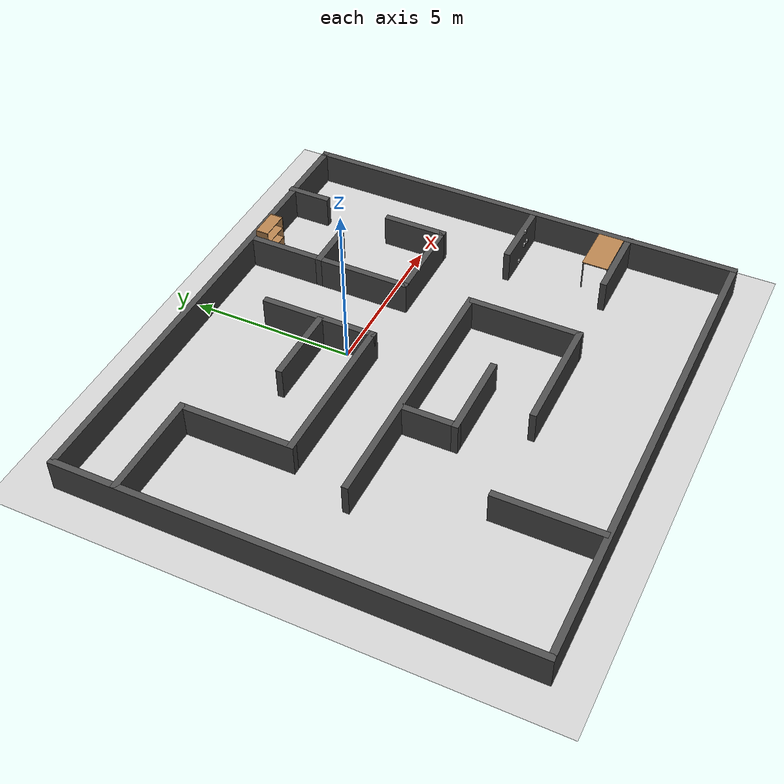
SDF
<sdf version="1.7">
 <world name="default">
  <light name="sun" type="directional">
   <pose>0 0 10 0 -0 0</pose>
   <diffuse>0.8 0.8 0.8 1</diffuse>
   <specular>0.2 0.2 0.2 1</specular>
   <attenuation>
    <range>1000</range>
    <constant>0.9</constant>
    <linear>0.01</linear>
    <quadratic>0.001</quadratic>
   </attenuation>
   <direction>-0.5 0.1 -0.9</direction>
   <spot><inner_angle>0</inner_angle><outer_angle>0</outer_angle><falloff>0</falloff></spot>
  </light>
  <model name="ground_plane">
   <static>1</static>
   <link name="link">
    <collision name="collision">
     <geometry><plane><normal>0 0 1</normal><size>100 100</size></plane></geometry>
     <surface><friction><ode><mu>100</mu><mu2>50</mu2></ode></friction></surface>
    </collision>
    <visual name="visual">
     <cast_shadows>0</cast_shadows>
     <geometry><plane><normal>0 0 1</normal><size>100 100</size></plane></geometry>
     <material>
      <script><uri>file://media/materials/scripts/gazebo.material</uri><name>Gazebo/Grey</name></script>
     </material>
    </visual>
    <velocity_decay><linear>0</linear><angular>0</angular></velocity_decay>
   </link>
  </model>
  <physics type="ode">
   <max_step_size>0.001</max_step_size>
   <real_time_factor>1</real_time_factor>
   <real_time_update_rate>1000</real_time_update_rate>
  </physics>
  <scene><ambient>0.4 0.4 0.4 1</ambient><background>0.7 0.7 0.7 1</background><shadows>1</shadows></scene>
  <spherical_coordinates>
   <surface_model>EARTH_WGS84</surface_model>
   <latitude_deg>0</latitude_deg>
   <longitude_deg>0</longitude_deg>
   <elevation>0</elevation>
   <heading_deg>0</heading_deg>
  </spherical_coordinates>
  <model name="taller3">
   <link name="Wall_101">
    <collision name="Wall_101_Collision">
     <geometry><box><size>1.37705 0.2 1</size></box></geometry>
     <pose>0 0 0.5 0 -0 0</pose>
    </collision>
    <visual name="Wall_101_Visual">
     <pose>0 0 0.5 0 -0 0</pose>
     <geometry><box><size>1.37705 0.2 1</size></box></geometry>
     <material>
      <script><uri>file://media/materials/scripts/gazebo.material</uri><name>Gazebo/DarkGrey</name></script>
     </material>
    </visual>
    <velocity_decay><linear>0</linear><angular>0</angular></velocity_decay>
    <pose>5.15447 4.00615 0 0 0 -1.5708</pose>
   </link>
   <link name="Wall_103">
    <collision name="Wall_103_Collision">
     <geometry><box><size>1.48406 0.2 1</size></box></geometry>
     <pose>0 0 0.5 0 -0 0</pose>
    </collision>
    <visual name="Wall_103_Visual">
     <pose>0 0 0.5 0 -0 0</pose>
     <geometry><box><size>1.48406 0.2 1</size></box></geometry>
     <material>
      <script><uri>file://media/materials/scripts/gazebo.material</uri><name>Gazebo/DarkGrey</name></script>
     </material>
    </visual>
    <velocity_decay><linear>0</linear><angular>0</angular></velocity_decay>
    <pose>3.12138 2.18706 0 0 -0 0</pose>
   </link>
   <link name="Wall_69">
    <collision name="Wall_69_Collision">
     <geometry><box><size>13.9976 0.2 1</size></box></geometry>
     <pose>0 0 0.5 0 -0 0</pose>
    </collision>
    <visual name="Wall_69_Visual">
     <pose>0 0 0.5 0 -0 0</pose>
     <geometry><box><size>13.9976 0.2 1</size></box></geometry>
     <material>
      <script><uri>file://media/materials/scripts/gazebo.material</uri><name>Gazebo/DarkGrey</name></script>
     </material>
    </visual>
    <velocity_decay><linear>0</linear><angular>0</angular></velocity_decay>
    <pose>-7.64501 -2.34615 0 0 0 -1.5708</pose>
   </link>
   <link name="Wall_70">
    <collision name="Wall_70_Collision">
     <geometry><box><size>15.1297 0.2 1</size></box></geometry>
     <pose>0 0 0.5 0 -0 0</pose>
    </collision>
    <visual name="Wall_70_Visual">
     <pose>0 0 0.5 0 -0 0</pose>
     <geometry><box><size>15.1297 0.2 1</size></box></geometry>
     <material>
      <script><uri>file://media/materials/scripts/gazebo.material</uri><name>Gazebo/DarkGrey</name></script>
     </material>
    </visual>
    <velocity_decay><linear>0</linear><angular>0</angular></velocity_decay>
    <pose>-0.180143 -9.24496 0 0 -0 0</pose>
   </link>
   <link name="Wall_71">
    <collision name="Wall_71_Collision">
     <geometry><box><size>13.9976 0.2 1</size></box></geometry>
     <pose>0 0 0.5 0 -0 0</pose>
    </collision>
    <visual name="Wall_71_Visual">
     <pose>0 0 0.5 0 -0 0</pose>
     <geometry><box><size>13.9976 0.2 1</size></box></geometry>
     <material>
      <script><uri>file://media/materials/scripts/gazebo.material</uri><name>Gazebo/DarkGrey</name></script>
     </material>
    </visual>
    <velocity_decay><linear>0</linear><angular>0</angular></velocity_decay>
    <pose>7.28473 -2.34615 0 0 -0 1.5708</pose>
   </link>
   <link name="Wall_72">
    <collision name="Wall_72_Collision">
     <geometry><box><size>14.9882 0.2 1</size></box></geometry>
     <pose>0 0 0.5 0 -0 0</pose>
    </collision>
    <visual name="Wall_72_Visual">
     <pose>0 0 0.5 0 -0 0</pose>
     <geometry><box><size>14.9882 0.2 1</size></box></geometry>
     <material>
      <script><uri>file://media/materials/scripts/gazebo.material</uri><name>Gazebo/DarkGrey</name></script>
     </material>
    </visual>
    <velocity_decay><linear>0</linear><angular>0</angular></velocity_decay>
    <pose>-0.109386 4.55267 0 0 -0 3.14159</pose>
   </link>
   <link name="Wall_75">
    <collision name="Wall_75_Collision">
     <geometry><box><size>8.01136 0.2 1</size></box></geometry>
     <pose>0 0 0.5 0 -0 0</pose>
    </collision>
    <visual name="Wall_75_Visual">
     <pose>0 0 0.5 0 -0 0</pose>
     <geometry><box><size>8.01136 0.2 1</size></box></geometry>
     <material>
      <script><uri>file://media/materials/scripts/gazebo.material</uri><name>Gazebo/DarkGrey</name></script>
     </material>
    </visual>
    <velocity_decay><linear>0</linear><angular>0</angular></velocity_decay>
    <pose>-1.21233 -2.68167 0 0 -0 0</pose>
   </link>
   <link name="Wall_76">
    <collision name="Wall_76_Collision">
     <geometry><box><size>3.57066 0.2 1</size></box></geometry>
     <pose>0 0 0.5 0 -0 0</pose>
    </collision>
    <visual name="Wall_76_Visual">
     <pose>0 0 0.5 0 -0 0</pose>
     <geometry><box><size>3.57066 0.2 1</size></box></geometry>
     <material>
      <script><uri>file://media/materials/scripts/gazebo.material</uri><name>Gazebo/DarkGrey</name></script>
     </material>
    </visual>
    <velocity_decay><linear>0</linear><angular>0</angular></velocity_decay>
    <pose>2.69336 -4.367 0 0 0 -1.5708</pose>
   </link>
   <link name="Wall_77">
    <collision name="Wall_77_Collision">
     <geometry><box><size>3.62416 0.2 1</size></box></geometry>
     <pose>0 0 0.5 0 -0 0</pose>
    </collision>
    <visual name="Wall_77_Visual">
     <pose>0 0 0.5 0 -0 0</pose>
     <geometry><box><size>3.62416 0.2 1</size></box></geometry>
     <material>
      <script><uri>file://media/materials/scripts/gazebo.material</uri><name>Gazebo/DarkGrey</name></script>
     </material>
    </visual>
    <velocity_decay><linear>0</linear><angular>0</angular></velocity_decay>
    <pose>0.981276 -6.05232 0 0 -0 3.14159</pose>
   </link>
   <link name="Wall_81">
    <collision name="Wall_81_Collision">
     <geometry><box><size>1.85858 0.2 1</size></box></geometry>
     <pose>0 0 0.5 0 -0 0</pose>
    </collision>
    <visual name="Wall_81_Visual">
     <pose>0 0 0.5 0 -0 0</pose>
     <geometry><box><size>1.85858 0.2 1</size></box></geometry>
     <material>
      <script><uri>file://media/materials/scripts/gazebo.material</uri><name>Gazebo/DarkGrey</name></script>
     </material>
    </visual>
    <velocity_decay><linear>0</linear><angular>0</angular></velocity_decay>
    <pose>-2.01486 -3.51096 0 0 0 -1.5708</pose>
   </link>
   <link name="Wall_82">
    <collision name="Wall_82_Collision">
     <geometry><box><size>2.66112 0.2 1</size></box></geometry>
     <pose>0 0 0.5 0 -0 0</pose>
    </collision>
    <visual name="Wall_82_Visual">
     <pose>0 0 0.5 0 -0 0</pose>
     <geometry><box><size>2.66112 0.2 1</size></box></geometry>
     <material>
      <script><uri>file://media/materials/scripts/gazebo.material</uri><name>Gazebo/DarkGrey</name></script>
     </material>
    </visual>
    <velocity_decay><linear>0</linear><angular>0</angular></velocity_decay>
    <pose>-0.784307 -4.34024 0 0 -0 0</pose>
   </link>
   <link name="Wall_84">
    <collision name="Wall_84_Collision">
     <geometry><box><size>2.3401 0.2 1</size></box></geometry>
     <pose>0 0 0.5 0 -0 0</pose>
    </collision>
    <visual name="Wall_84_Visual">
     <pose>0 0 0.5 0 -0 0</pose>
     <geometry><box><size>2.3401 0.2 1</size></box></geometry>
     <material>
      <script><uri>file://media/materials/scripts/gazebo.material</uri><name>Gazebo/DarkGrey</name></script>
     </material>
    </visual>
    <velocity_decay><linear>0</linear><angular>0</angular></velocity_decay>
    <pose>6.22452 -2.84217 0 0 -0 3.14159</pose>
   </link>
   <link name="Wall_86">
    <collision name="Wall_86_Collision">
     <geometry><box><size>3.19614 0.2 1</size></box></geometry>
     <pose>0 0 0.5 0 -0 0</pose>
    </collision>
    <visual name="Wall_86_Visual">
     <pose>0 0 0.5 0 -0 0</pose>
     <geometry><box><size>3.19614 0.2 1</size></box></geometry>
     <material>
      <script><uri>file://media/materials/scripts/gazebo.material</uri><name>Gazebo/DarkGrey</name></script>
     </material>
    </visual>
    <velocity_decay><linear>0</linear><angular>0</angular></velocity_decay>
    <pose>-3.78045 -7.6574 0 0 -0 1.5708</pose>
   </link>
   <link name="Wall_88">
    <collision name="Wall_88_Collision">
     <geometry><box><size>2.3936 0.2 1</size></box></geometry>
     <pose>0 0 0.5 0 -0 0</pose>
    </collision>
    <visual name="Wall_88_Visual">
     <pose>0 0 0.5 0 -0 0</pose>
     <geometry><box><size>2.3936 0.2 1</size></box></geometry>
     <material>
      <script><uri>file://media/materials/scripts/gazebo.material</uri><name>Gazebo/DarkGrey</name></script>
     </material>
    </visual>
    <velocity_decay><linear>0</linear><angular>0</angular></velocity_decay>
    <pose>6.19777 -5.94532 0 0 -0 3.14159</pose>
   </link>
   <link name="Wall_90">
    <collision name="Wall_90_Collision">
     <geometry><box><size>3.30315 0.2 1</size></box></geometry>
     <pose>0 0 0.5 0 -0 0</pose>
    </collision>
    <visual name="Wall_90_Visual">
     <pose>0 0 0.5 0 -0 0</pose>
     <geometry><box><size>3.30315 0.2 1</size></box></geometry>
     <material>
      <script><uri>file://media/materials/scripts/gazebo.material</uri><name>Gazebo/DarkGrey</name></script>
     </material>
    </visual>
    <velocity_decay><linear>0</linear><angular>0</angular></velocity_decay>
    <pose>-6.08105 2.61508 0 0 -0 0</pose>
   </link>
   <link name="Wall_91">
    <collision name="Wall_91_Collision">
     <geometry><box><size>3.57066 0.2 1</size></box></geometry>
     <pose>0 0 0.5 0 -0 0</pose>
    </collision>
    <visual name="Wall_91_Visual">
     <pose>0 0 0.5 0 -0 0</pose>
     <geometry><box><size>3.57066 0.2 1</size></box></geometry>
     <material>
      <script><uri>file://media/materials/scripts/gazebo.material</uri><name>Gazebo/DarkGrey</name></script>
     </material>
    </visual>
    <velocity_decay><linear>0</linear><angular>0</angular></velocity_decay>
    <pose>-4.52948 0.929753 0 0 0 -1.5708</pose>
   </link>
   <link name="Wall_92">
    <collision name="Wall_92_Collision">
     <geometry><box><size>4.90822 0.2 1</size></box></geometry>
     <pose>0 0 0.5 0 -0 0</pose>
    </collision>
    <visual name="Wall_92_Visual">
     <pose>0 0 0.5 0 -0 0</pose>
     <geometry><box><size>4.90822 0.2 1</size></box></geometry>
     <material>
      <script><uri>file://media/materials/scripts/gazebo.material</uri><name>Gazebo/DarkGrey</name></script>
     </material>
    </visual>
    <velocity_decay><linear>0</linear><angular>0</angular></velocity_decay>
    <pose>-2.17537 -0.755576 0 0 -0 0</pose>
   </link>
   <link name="Wall_93">
    <collision name="Wall_93_Collision">
     <geometry><box><size>3.62416 0.2 1</size></box></geometry>
     <pose>0 0 0.5 0 -0 0</pose>
    </collision>
    <visual name="Wall_93_Visual">
     <pose>0 0 0.5 0 -0 0</pose>
     <geometry><box><size>3.62416 0.2 1</size></box></geometry>
     <material>
      <script><uri>file://media/materials/scripts/gazebo.material</uri><name>Gazebo/DarkGrey</name></script>
     </material>
    </visual>
    <velocity_decay><linear>0</linear><angular>0</angular></velocity_decay>
    <pose>0.178738 0.956504 0 0 -0 1.5708</pose>
   </link>
   <link name="Wall_95">
    <collision name="Wall_95_Collision">
     <geometry><box><size>2.44711 0.2 1</size></box></geometry>
     <pose>0 0 0.5 0 -0 0</pose>
    </collision>
    <visual name="Wall_95_Visual">
     <pose>0 0 0.5 0 -0 0</pose>
     <geometry><box><size>2.44711 0.2 1</size></box></geometry>
     <material>
      <script><uri>file://media/materials/scripts/gazebo.material</uri><name>Gazebo/DarkGrey</name></script>
     </material>
    </visual>
    <velocity_decay><linear>0</linear><angular>0</angular></velocity_decay>
    <pose>-1.05182 0.903002 0 0 -0 3.14159</pose>
   </link>
   <link name="Wall_97">
    <collision name="Wall_97_Collision">
     <geometry><box><size>5.28274 0.2 1</size></box></geometry>
     <pose>0 0 0.5 0 -0 0</pose>
    </collision>
    <visual name="Wall_97_Visual">
     <pose>0 0 0.5 0 -0 0</pose>
     <geometry><box><size>5.28274 0.2 1</size></box></geometry>
     <material>
      <script><uri>file://media/materials/scripts/gazebo.material</uri><name>Gazebo/DarkGrey</name></script>
     </material>
    </visual>
    <velocity_decay><linear>0</linear><angular>0</angular></velocity_decay>
    <pose>2.47935 1.8928 0 0 0 -1.5708</pose>
   </link>
   <link name="Wall_98">
    <collision name="Wall_98_Collision">
     <geometry><box><size>2.87513 0.2 1</size></box></geometry>
     <pose>0 0 0.5 0 -0 0</pose>
    </collision>
    <visual name="Wall_98_Visual">
     <pose>0 0 0.5 0 -0 0</pose>
     <geometry><box><size>2.87513 0.2 1</size></box></geometry>
     <material>
      <script><uri>file://media/materials/scripts/gazebo.material</uri><name>Gazebo/DarkGrey</name></script>
     </material>
    </visual>
    <velocity_decay><linear>0</linear><angular>0</angular></velocity_decay>
    <pose>3.81691 -0.648571 0 0 -0 0</pose>
   </link>
   <link name="Wall_99">
    <collision name="Wall_99_Collision">
     <geometry><box><size>2.01909 0.2 1</size></box></geometry>
     <pose>0 0 0.5 0 -0 0</pose>
    </collision>
    <visual name="Wall_99_Visual">
     <pose>0 0 0.5 0 -0 0</pose>
     <geometry><box><size>2.01909 0.2 1</size></box></geometry>
     <material>
      <script><uri>file://media/materials/scripts/gazebo.material</uri><name>Gazebo/DarkGrey</name></script>
     </material>
    </visual>
    <velocity_decay><linear>0</linear><angular>0</angular></velocity_decay>
    <pose>5.15447 0.260972 0 0 -0 1.5708</pose>
   </link>
   <static>1</static>
  </model>
  <gravity>0 0 -9.8</gravity>
  <magnetic_field>6e-06 2.3e-05 -4.2e-05</magnetic_field>
  <atmosphere type="adiabatic"/>
  <model name="caja_10">
   <static>0</static>
   <pose>5.7 -3.15 1.5 0 0 -1.57</pose>
   <link name="link_00">
    <visual name="visual_00">
     <geometry><mesh><uri>model://5x5_50_10.dae</uri><scale>0.05 0.05 0.05</scale></mesh></geometry>
    </visual>
    <visual name="fondo"><geometry><box><size>0.048 0.1 0.1</size></box></geometry></visual>
    <collision name="collision">
     <geometry><box><size>0.05 0.1 0.1</size></box></geometry>
     <surface><friction><ode><mu>100</mu><mu2>50</mu2></ode></friction></surface>
    </collision>
    <inertial><inertia><ixx>0.009</ixx><iyy>0.008</iyy><izz>0.008</izz></inertia></inertial>
   </link>
  </model>
  <model name="caja_24">
   <static>0</static>
   <pose>5.7 -3.15 1 0 0 -1.57</pose>
   <link name="link_00">
    <visual name="visual_00">
     <geometry><mesh><uri>model://5x5_50_24.dae</uri><scale>0.05 0.05 0.05</scale></mesh></geometry>
    </visual>
    <visual name="fondo"><geometry><box><size>0.048 0.1 0.1</size></box></geometry></visual>
    <collision name="collision">
     <geometry><box><size>0.05 0.1 0.1</size></box></geometry>
     <surface><friction><ode><mu>100</mu><mu2>50</mu2></ode></friction></surface>
    </collision>
    <inertial><inertia><ixx>0.009</ixx><iyy>0.008</iyy><izz>0.008</izz></inertia></inertial>
   </link>
  </model>
  <model name="caja_35">
   <static>0</static>
   <pose>5.9 -3.15 1 0 0 -1.57</pose>
   <link name="link_00">
    <visual name="visual_00">
     <geometry><mesh><uri>model://5x5_50_35.dae</uri><scale>0.05 0.05 0.05</scale></mesh></geometry>
    </visual>
    <visual name="fondo"><geometry><box><size>0.048 0.1 0.1</size></box></geometry></visual>
    <collision name="collision">
     <geometry><box><size>0.05 0.1 0.1</size></box></geometry>
     <surface><friction><ode><mu>100</mu><mu2>50</mu2></ode></friction></surface>
    </collision>
    <inertial><inertia><ixx>0.009</ixx><iyy>0.008</iyy><izz>0.008</izz></inertia></inertial>
   </link>
  </model>
  <model name="caja_49">
   <static>0</static>
   <pose>5.3 -3.15 0.66 0 0 -1.57</pose>
   <link name="link_00">
    <visual name="visual_00">
     <geometry><mesh><uri>model://5x5_50_49.dae</uri><scale>0.05 0.05 0.05</scale></mesh></geometry>
    </visual>
    <visual name="fondo"><geometry><box><size>0.048 0.1 0.1</size></box></geometry></visual>
    <collision name="collision">
     <geometry><box><size>0.05 0.1 0.1</size></box></geometry>
     <surface><friction><ode><mu>100</mu><mu2>50</mu2></ode></friction></surface>
    </collision>
    <inertial><inertia><ixx>0.009</ixx><iyy>0.008</iyy><izz>0.008</izz></inertia></inertial>
   </link>
  </model>
  <model name="bookshelf">
   <static>1</static>
   <link name="link">
    <inertial><mass>1</mass></inertial>
    <collision name="back">
     <pose>0 0.005 0.6 0 -0 0</pose>
     <geometry><box><size>0.9 0.01 1.2</size></box></geometry>
    </collision>
    <visual name="visual1">
     <pose>0 0.005 0.6 0 -0 0</pose>
     <geometry><box><size>0.9 0.01 1.2</size></box></geometry>
     <material>
      <script><uri>file://media/materials/scripts/gazebo.material</uri><name>Gazebo/Wood</name></script>
     </material>
    </visual>
    <collision name="left_side">
     <pose>0.45 -0.195 0.6 0 -0 0</pose>
     <geometry><box><size>0.02 0.4 1.2</size></box></geometry>
    </collision>
    <visual name="visual2">
     <pose>0.45 -0.195 0.6 0 -0 0</pose>
     <geometry><box><size>0.02 0.4 1.2</size></box></geometry>
     <material>
      <script><uri>file://media/materials/scripts/gazebo.material</uri><name>Gazebo/Wood</name></script>
     </material>
    </visual>
    <collision name="right_side">
     <pose>-0.45 -0.195 0.6 0 -0 0</pose>
     <geometry><box><size>0.02 0.4 1.2</size></box></geometry>
    </collision>
    <visual name="visual3">
     <pose>-0.45 -0.195 0.6 0 -0 0</pose>
     <geometry><box><size>0.02 0.4 1.2</size></box></geometry>
     <material>
      <script><uri>file://media/materials/scripts/gazebo.material</uri><name>Gazebo/Wood</name></script>
     </material>
    </visual>
    <collision name="bottom">
     <pose>0 -0.195 0.03 0 -0 0</pose>
     <geometry><box><size>0.88 0.4 0.06</size></box></geometry>
    </collision>
    <visual name="visual4">
     <pose>0 -0.195 0.03 0 -0 0</pose>
     <geometry><box><size>0.88 0.4 0.06</size></box></geometry>
     <material>
      <script><uri>file://media/materials/scripts/gazebo.material</uri><name>Gazebo/Wood</name></script>
     </material>
    </visual>
    <collision name="top">
     <pose>0 -0.195 1.19 0 -0 0</pose>
     <geometry><box><size>0.88 0.4 0.02</size></box></geometry>
     <surface><friction><ode><mu>100</mu><mu2>50</mu2></ode></friction></surface>
    </collision>
    <visual name="visual5">
     <pose>0 -0.195 1.19 0 -0 0</pose>
     <geometry><box><size>0.88 0.4 0.02</size></box></geometry>
     <material>
      <script><uri>file://media/materials/scripts/gazebo.material</uri><name>Gazebo/Wood</name></script>
     </material>
    </visual>
    <collision name="low_shelf">
     <pose>0 -0.195 0.43 0 -0 0</pose>
     <geometry><box><size>0.88 0.4 0.02</size></box></geometry>
    </collision>
    <visual name="visual6">
     <pose>0 -0.195 0.43 0 -0 0</pose>
     <geometry><box><size>0.88 0.4 0.02</size></box></geometry>
     <material>
      <script><uri>file://media/materials/scripts/gazebo.material</uri><name>Gazebo/Wood</name></script>
     </material>
    </visual>
    <collision name="high_shelf">
     <pose>0 -0.195 0.8 0 -0 0</pose>
     <geometry><box><size>0.88 0.4 0.02</size></box></geometry>
    </collision>
    <visual name="visual7">
     <pose>0 -0.195 0.8 0 -0 0</pose>
     <geometry><box><size>0.88 0.4 0.02</size></box></geometry>
     <material>
      <script><uri>file://media/materials/scripts/gazebo.material</uri><name>Gazebo/Wood</name></script>
     </material>
    </visual>
   </link>
   <pose>3.05303 4.43601 0 0 -0 0</pose>
  </model>
  <model name="table">
   <static>1</static>
   <link name="link">
    <collision name="surface">
     <pose>0 0 1 0 -0 0</pose>
     <geometry><box><size>1.5 0.8 0.03</size></box></geometry>
     <surface><friction><ode><mu>0.6</mu><mu2>0.6</mu2></ode></friction></surface>
    </collision>
    <visual name="visual1">
     <pose>0 0 1 0 -0 0</pose>
     <geometry><box><size>1.5 0.8 0.03</size></box></geometry>
     <material>
      <script><uri>file://media/materials/scripts/gazebo.material</uri><name>Gazebo/Wood</name></script>
     </material>
    </visual>
    <collision name="front_left_leg">
     <pose>0.68 0.38 0.5 0 -0 0</pose>
     <geometry><cylinder><radius>0.02</radius><length>1</length></cylinder></geometry>
    </collision>
    <visual name="front_left_leg">
     <pose>0.68 0.38 0.5 0 -0 0</pose>
     <geometry><cylinder><radius>0.02</radius><length>1</length></cylinder></geometry>
     <material>
      <script><uri>file://media/materials/scripts/gazebo.material</uri><name>Gazebo/Grey</name></script>
     </material>
    </visual>
    <collision name="front_right_leg">
     <pose>0.68 -0.38 0.5 0 -0 0</pose>
     <geometry><cylinder><radius>0.02</radius><length>1</length></cylinder></geometry>
    </collision>
    <visual name="front_right_leg">
     <pose>0.68 -0.38 0.5 0 -0 0</pose>
     <geometry><cylinder><radius>0.02</radius><length>1</length></cylinder></geometry>
     <material>
      <script><uri>file://media/materials/scripts/gazebo.material</uri><name>Gazebo/Grey</name></script>
     </material>
    </visual>
    <collision name="back_right_leg">
     <pose>-0.68 -0.38 0.5 0 -0 0</pose>
     <geometry><cylinder><radius>0.02</radius><length>1</length></cylinder></geometry>
    </collision>
    <visual name="back_right_leg">
     <pose>-0.68 -0.38 0.5 0 -0 0</pose>
     <geometry><cylinder><radius>0.02</radius><length>1</length></cylinder></geometry>
     <material>
      <script><uri>file://media/materials/scripts/gazebo.material</uri><name>Gazebo/Grey</name></script>
     </material>
    </visual>
    <collision name="back_left_leg">
     <pose>-0.68 0.38 0.5 0 -0 0</pose>
     <geometry><cylinder><radius>0.02</radius><length>1</length></cylinder></geometry>
    </collision>
    <visual name="back_left_leg">
     <pose>-0.68 0.38 0.5 0 -0 0</pose>
     <geometry><cylinder><radius>0.02</radius><length>1</length></cylinder></geometry>
     <material>
      <script><uri>file://media/materials/scripts/gazebo.material</uri><name>Gazebo/Grey</name></script>
     </material>
    </visual>
   </link>
   <pose>6.42712 -5.43058 0 0 -0 0</pose>
  </model>
 </world>
</sdf>
